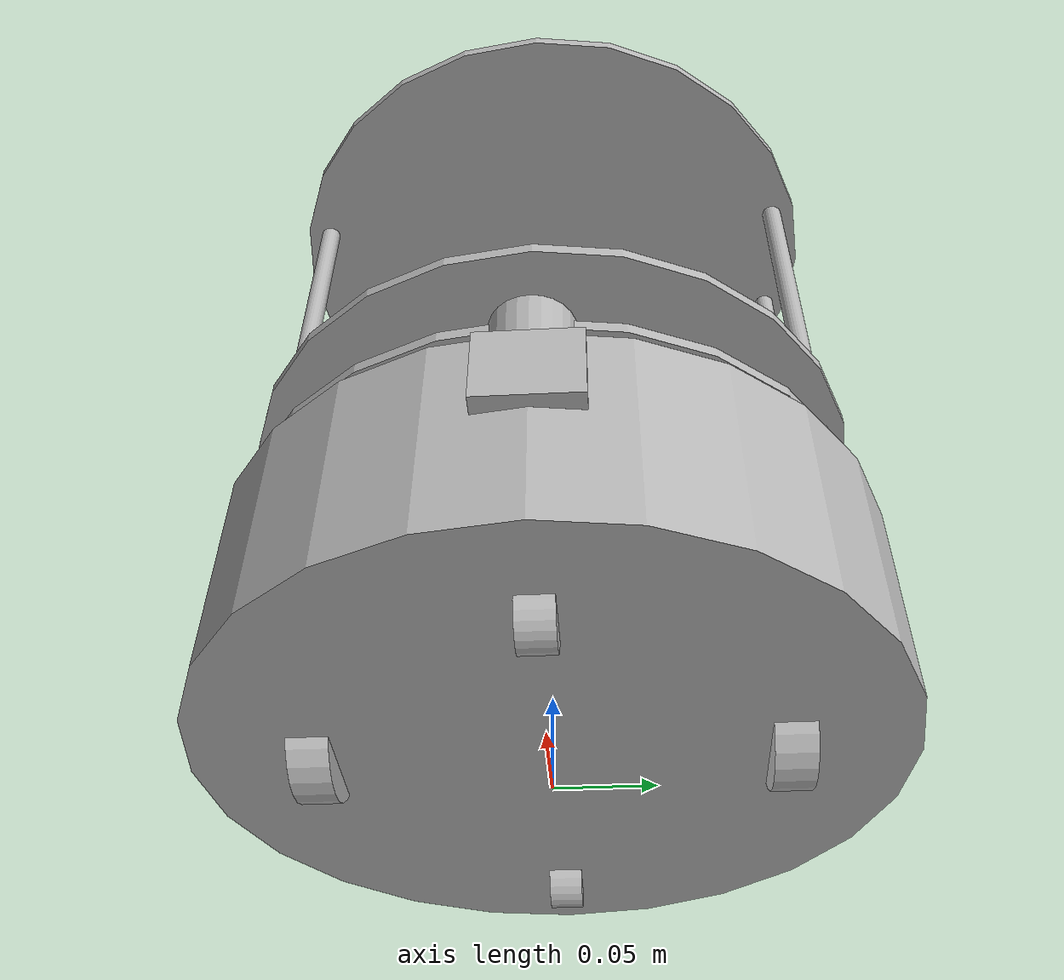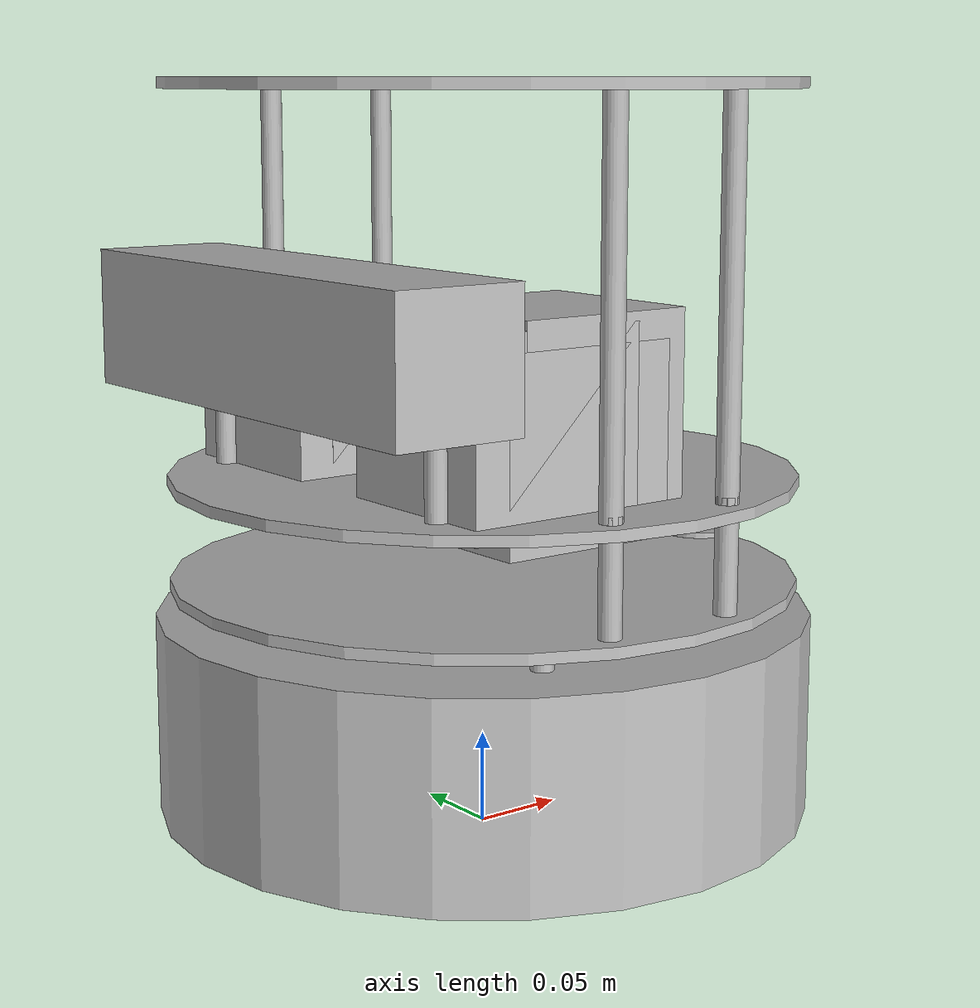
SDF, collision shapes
<?xml version="1.0"?>
<sdf version='1.6'>
  <model name='turtlebotROS'>
    <link name='base_footprint'>
      <pose frame=''>0 0 0 0 -0 0</pose>
      <inertial>
        <pose frame=''>-0.009496 1.3e-05 0.135573 0 -0 0</pose>
        <mass>4.9213</mass>
        <inertia>
          <ixx>0.142129</ixx>
          <ixy>-4.09257e-06</ixy>
          <ixz>0.0154899</ixz>
          <iyy>0.140784</iyy>
          <iyz>6.52071e-06</iyz>
          <izz>0.0801071</izz>
        </inertia>
      </inertial>
      <collision name='base_footprint_fixed_joint_lump__base_collision'>
        <pose frame=''>0 0 0.06969 0 -0 0</pose>
        <geometry>
          <cylinder>
            <length>0.10938</length>
            <radius>0.178</radius>
          </cylinder>
        </geometry>
      </collision>
      <collision name='base_footprint_fixed_joint_lump__camera_link_collision_1'>
        <pose frame=''>-0.118 0 0.2812 0 -0 0</pose>
        <geometry>
          <box>
            <size>0.07271 0.27794 0.073</size>
          </box>
        </geometry>
        <surface>
          <contact>
            <ode/>
          </contact>
          <friction>
            <ode/>
          </friction>
        </surface>
      </collision>
      <collision name='base_footprint_fixed_joint_lump__caster_back_link_collision_2'>
        <pose frame=''>-0.135 0 0.0192 -1.5708 0 0</pose>
        <geometry>
          <cylinder>
            <length>0.0176</length>
            <radius>0.017</radius>
          </cylinder>
        </geometry>
        <surface>
          <contact>
            <ode>
              <kp>1e+06</kp>
              <kd>100</kd>
              <max_vel>1</max_vel>
              <min_depth>0.001</min_depth>
            </ode>
          </contact>
          <friction>
            <ode>
              <mu>0</mu>
              <mu2>0</mu2>
            </ode>
          </friction>
        </surface>
      </collision>
      <collision name='base_footprint_fixed_joint_lump__caster_front_link_collision_3'>
        <pose frame=''>0.115 0 0.0172 -1.5708 0 0</pose>
        <geometry>
          <cylinder>
            <length>0.0176</length>
            <radius>0.017</radius>
          </cylinder>
        </geometry>
        <surface>
          <contact>
            <ode>
              <kp>1e+06</kp>
              <kd>100</kd>
              <max_vel>1</max_vel>
              <min_depth>0.001</min_depth>
            </ode>
          </contact>
          <friction>
            <ode>
              <mu>0</mu>
              <mu2>0</mu2>
            </ode>
          </friction>
        </surface>
      </collision>
      <collision name='base_footprint_fixed_joint_lump__plate_bottom_link_collision_4'>
        <pose frame=''>0 0 0.1408 0 -0 0</pose>
        <geometry>
          <cylinder>
            <length>0.006</length>
            <radius>0.17</radius>
          </cylinder>
        </geometry>
      </collision>
      <collision name='base_footprint_fixed_joint_lump__plate_middle_link_collision_5'>
        <pose frame=''>0 0 0.1976 0 -0 0</pose>
        <geometry>
          <cylinder>
            <length>0.006</length>
            <radius>0.17</radius>
          </cylinder>
        </geometry>
      </collision>
      <collision name='base_footprint_fixed_joint_lump__plate_top_link_collision_6'>
        <pose frame=''>0 0 0.4068 0 -0 0</pose>
        <geometry>
          <cylinder>
            <length>0.006</length>
            <radius>0.17</radius>
          </cylinder>
        </geometry>
      </collision>
      <collision name='base_footprint_fixed_joint_lump__pole_bottom_0_link_collision_7'>
        <pose frame=''>0.12 0.082 0.113 0 -0 0</pose>
        <geometry>
          <cylinder>
            <length>0.0492</length>
            <radius>0.006</radius>
          </cylinder>
        </geometry>
      </collision>
      <collision name='base_footprint_fixed_joint_lump__pole_bottom_1_link_collision_8'>
        <pose frame=''>0.055 0.12 0.113 0 -0 0</pose>
        <geometry>
          <cylinder>
            <length>0.0492</length>
            <radius>0.006</radius>
          </cylinder>
        </geometry>
      </collision>
      <collision name='base_footprint_fixed_joint_lump__pole_bottom_2_link_collision_9'>
        <pose frame=''>-0.055 0.12 0.113 0 -0 0</pose>
        <geometry>
          <cylinder>
            <length>0.0492</length>
            <radius>0.006</radius>
          </cylinder>
        </geometry>
      </collision>
      <collision name='base_footprint_fixed_joint_lump__pole_bottom_3_link_collision_10'>
        <pose frame=''>0.12 -0.082 0.113 0 -0 0</pose>
        <geometry>
          <cylinder>
            <length>0.0492</length>
            <radius>0.006</radius>
          </cylinder>
        </geometry>
      </collision>
      <collision name='base_footprint_fixed_joint_lump__pole_bottom_4_link_collision_11'>
        <pose frame=''>0.055 -0.12 0.113 0 -0 0</pose>
        <geometry>
          <cylinder>
            <length>0.0492</length>
            <radius>0.006</radius>
          </cylinder>
        </geometry>
      </collision>
      <collision name='base_footprint_fixed_joint_lump__pole_bottom_5_link_collision_12'>
        <pose frame=''>-0.055 -0.12 0.113 0 -0 0</pose>
        <geometry>
          <cylinder>
            <length>0.0492</length>
            <radius>0.006</radius>
          </cylinder>
        </geometry>
      </collision>
      <collision name='base_footprint_fixed_joint_lump__pole_kinect_0_link_collision_13'>
        <pose frame=''>-0.1024 0.098 0.2474 0 -0 0</pose>
        <geometry>
          <cylinder>
            <length>0.0936</length>
            <radius>0.006</radius>
          </cylinder>
        </geometry>
      </collision>
      <collision name='base_footprint_fixed_joint_lump__pole_kinect_1_link_collision_14'>
        <pose frame=''>-0.1024 -0.098 0.2474 0 -0 0</pose>
        <geometry>
          <cylinder>
            <length>0.0936</length>
            <radius>0.006</radius>
          </cylinder>
        </geometry>
      </collision>
      <collision name='base_footprint_fixed_joint_lump__pole_middle_0_link_collision_15'>
        <pose frame=''>0.0381 0.1505 0.1742 0 -0 0</pose>
        <geometry>
          <cylinder>
            <length>0.0608</length>
            <radius>0.006</radius>
          </cylinder>
        </geometry>
      </collision>
      <collision name='base_footprint_fixed_joint_lump__pole_middle_1_link_collision_16'>
        <pose frame=''>0.0381 -0.1505 0.1742 0 -0 0</pose>
        <geometry>
          <cylinder>
            <length>0.0608</length>
            <radius>0.006</radius>
          </cylinder>
        </geometry>
      </collision>
      <collision name='base_footprint_fixed_joint_lump__pole_middle_2_link_collision_17'>
        <pose frame=''>-0.0381 0.1505 0.1742 0 -0 0</pose>
        <geometry>
          <cylinder>
            <length>0.0608</length>
            <radius>0.006</radius>
          </cylinder>
        </geometry>
      </collision>
      <collision name='base_footprint_fixed_joint_lump__pole_middle_3_link_collision_18'>
        <pose frame=''>-0.0381 -0.1505 0.1742 0 -0 0</pose>
        <geometry>
          <cylinder>
            <length>0.0608</length>
            <radius>0.006</radius>
          </cylinder>
        </geometry>
      </collision>
      <collision name='base_footprint_fixed_joint_lump__pole_top_0_link_collision_19'>
        <pose frame=''>0.0381 0.1505 0.3022 0 -0 0</pose>
        <geometry>
          <cylinder>
            <length>0.2032</length>
            <radius>0.006</radius>
          </cylinder>
        </geometry>
      </collision>
      <collision name='base_footprint_fixed_joint_lump__pole_top_1_link_collision_20'>
        <pose frame=''>0.0381 -0.1505 0.3022 0 -0 0</pose>
        <geometry>
          <cylinder>
            <length>0.2032</length>
            <radius>0.006</radius>
          </cylinder>
        </geometry>
      </collision>
      <collision name='base_footprint_fixed_joint_lump__pole_top_2_link_collision_21'>
        <pose frame=''>-0.0381 0.1505 0.3022 0 -0 0</pose>
        <geometry>
          <cylinder>
            <length>0.2032</length>
            <radius>0.006</radius>
          </cylinder>
        </geometry>
      </collision>
      <collision name='base_footprint_fixed_joint_lump__pole_top_3_link_collision_22'>
        <pose frame=''>-0.0381 -0.1505 0.3022 0 -0 0</pose>
        <geometry>
          <cylinder>
            <length>0.2032</length>
            <radius>0.006</radius>
          </cylinder>
        </geometry>
      </collision>
      <visual name='base_footprint_fixed_joint_lump__base_link_visual'>
        <pose frame=''>0.001 0 0.06219 0 -0 0</pose>
        <geometry>
          <mesh>
            <scale>1 1 1</scale>
            <uri>model://turtlebotROS/meshes/main_body.dae</uri>
          </mesh>
        </geometry>
        <material>
          <script>
            <uri>__default__</uri>
            <name>__default__</name>
          </script>
        </material>
      </visual>
      <visual name='base_footprint_fixed_joint_lump__camera_link_visual_1'>
        <pose frame=''>-0.118 0 0.2812 0 -0 1.5708</pose>
        <geometry>
          <mesh>
            <scale>1 1 1</scale>
            <uri>model://turtlebotROS/meshes/sensors/kinect.dae</uri>
          </mesh>
        </geometry>
        <material>
          <script>
            <uri>__default__</uri>
            <name>__default__</name>
          </script>
        </material>
      </visual>
      <visual name='base_footprint_fixed_joint_lump__plate_bottom_link_visual_2'>
        <pose frame=''>0.02364 0 0.1408 0 -0 0</pose>
        <geometry>
          <mesh>
            <scale>1 1 1</scale>
            <uri>model://turtlebotROS/meshes/stacks/hexagons/plate_bottom.dae</uri>
          </mesh>
        </geometry>
      </visual>
      <visual name='base_footprint_fixed_joint_lump__plate_middle_link_visual_3'>
        <pose frame=''>-0.01364 0 0.1976 0 -0 0</pose>
        <geometry>
          <mesh>
            <scale>1 1 1</scale>
            <uri>model://turtlebotROS/meshes/stacks/hexagons/plate_middle.dae</uri>
          </mesh>
        </geometry>
      </visual>
      <visual name='base_footprint_fixed_joint_lump__plate_top_link_visual_4'>
        <pose frame=''>-0.01364 0 0.4068 0 -0 0</pose>
        <geometry>
          <mesh>
            <scale>1 1 1</scale>
            <uri>model://turtlebotROS/meshes/stacks/hexagons/plate_top.dae</uri>
          </mesh>
        </geometry>
      </visual>
      <visual name='base_footprint_fixed_joint_lump__pole_bottom_0_link_visual_5'>
        <pose frame=''>0.12 0.082 0.113 0 -0 0</pose>
        <geometry>
          <mesh>
            <scale>1 1 1</scale>
            <uri>model://turtlebotROS/meshes/stacks/hexagons/pole_bottom.dae</uri>
          </mesh>
        </geometry>
      </visual>
      <visual name='base_footprint_fixed_joint_lump__pole_bottom_1_link_visual_6'>
        <pose frame=''>0.055 0.12 0.113 0 -0 0</pose>
        <geometry>
          <mesh>
            <scale>1 1 1</scale>
            <uri>model://turtlebotROS/meshes/stacks/hexagons/pole_bottom.dae</uri>
          </mesh>
        </geometry>
      </visual>
      <visual name='base_footprint_fixed_joint_lump__pole_bottom_2_link_visual_7'>
        <pose frame=''>-0.055 0.12 0.113 0 -0 0</pose>
        <geometry>
          <mesh>
            <scale>1 1 1</scale>
            <uri>model://turtlebotROS/meshes/stacks/hexagons/pole_bottom.dae</uri>
          </mesh>
        </geometry>
      </visual>
      <visual name='base_footprint_fixed_joint_lump__pole_bottom_3_link_visual_8'>
        <pose frame=''>0.12 -0.082 0.113 0 -0 0</pose>
        <geometry>
          <mesh>
            <scale>1 1 1</scale>
            <uri>model://turtlebotROS/meshes/stacks/hexagons/pole_bottom.dae</uri>
          </mesh>
        </geometry>
      </visual>
      <visual name='base_footprint_fixed_joint_lump__pole_bottom_4_link_visual_9'>
        <pose frame=''>0.055 -0.12 0.113 0 -0 0</pose>
        <geometry>
          <mesh>
            <scale>1 1 1</scale>
            <uri>model://turtlebotROS/meshes/stacks/hexagons/pole_bottom.dae</uri>
          </mesh>
        </geometry>
      </visual>
      <visual name='base_footprint_fixed_joint_lump__pole_bottom_5_link_visual_10'>
        <pose frame=''>-0.055 -0.12 0.113 0 -0 0</pose>
        <geometry>
          <mesh>
            <scale>1 1 1</scale>
            <uri>model://turtlebotROS/meshes/stacks/hexagons/pole_bottom.dae</uri>
          </mesh>
        </geometry>
      </visual>
      <visual name='base_footprint_fixed_joint_lump__pole_kinect_0_link_visual_11'>
        <pose frame=''>-0.1024 0.098 0.2374 0 -0 0</pose>
        <geometry>
          <mesh>
            <scale>1 1 1</scale>
            <uri>model://turtlebotROS/meshes/sensors/sensor_pole.dae</uri>
          </mesh>
        </geometry>
      </visual>
      <visual name='base_footprint_fixed_joint_lump__pole_kinect_1_link_visual_12'>
        <pose frame=''>-0.1024 -0.098 0.2374 0 -0 0</pose>
        <geometry>
          <mesh>
            <scale>1 1 1</scale>
            <uri>model://turtlebotROS/meshes/sensors/sensor_pole.dae</uri>
          </mesh>
        </geometry>
      </visual>
      <visual name='base_footprint_fixed_joint_lump__pole_middle_0_link_visual_13'>
        <pose frame=''>0.0381 0.1505 0.1742 3.14159 -0 3.14159</pose>
        <geometry>
          <mesh>
            <scale>1 1 1</scale>
            <uri>model://turtlebotROS/meshes/stacks/hexagons/pole_middle.dae</uri>
          </mesh>
        </geometry>
      </visual>
      <visual name='base_footprint_fixed_joint_lump__pole_middle_1_link_visual_14'>
        <pose frame=''>0.0381 -0.1505 0.1742 3.14159 -0 3.14159</pose>
        <geometry>
          <mesh>
            <scale>1 1 1</scale>
            <uri>model://turtlebotROS/meshes/stacks/hexagons/pole_middle.dae</uri>
          </mesh>
        </geometry>
      </visual>
      <visual name='base_footprint_fixed_joint_lump__pole_middle_2_link_visual_15'>
        <pose frame=''>-0.0381 0.1505 0.1742 3.14159 -0 3.14159</pose>
        <geometry>
          <mesh>
            <scale>1 1 1</scale>
            <uri>model://turtlebotROS/meshes/stacks/hexagons/pole_middle.dae</uri>
          </mesh>
        </geometry>
      </visual>
      <visual name='base_footprint_fixed_joint_lump__pole_middle_3_link_visual_16'>
        <pose frame=''>-0.0381 -0.1505 0.1742 3.14159 -0 3.14159</pose>
        <geometry>
          <mesh>
            <scale>1 1 1</scale>
            <uri>model://turtlebotROS/meshes/stacks/hexagons/pole_middle.dae</uri>
          </mesh>
        </geometry>
      </visual>
      <visual name='base_footprint_fixed_joint_lump__pole_top_0_link_visual_17'>
        <pose frame=''>0.0381 0.1505 0.3022 0 -0 0</pose>
        <geometry>
          <mesh>
            <scale>1 1 1</scale>
            <uri>model://turtlebotROS/meshes/stacks/hexagons/pole_top.dae</uri>
          </mesh>
        </geometry>
      </visual>
      <visual name='base_footprint_fixed_joint_lump__pole_top_1_link_visual_18'>
        <pose frame=''>0.0381 -0.1505 0.3022 0 -0 0</pose>
        <geometry>
          <mesh>
            <scale>1 1 1</scale>
            <uri>model://turtlebotROS/meshes/stacks/hexagons/pole_top.dae</uri>
          </mesh>
        </geometry>
      </visual>
      <visual name='base_footprint_fixed_joint_lump__pole_top_2_link_visual_19'>
        <pose frame=''>-0.0381 0.1505 0.3022 0 -0 0</pose>
        <geometry>
          <mesh>
            <scale>1 1 1</scale>
            <uri>model://turtlebotROS/meshes/stacks/hexagons/pole_top.dae</uri>
          </mesh>
        </geometry>
      </visual>
      <visual name='base_footprint_fixed_joint_lump__pole_top_3_link_visual_20'>
        <pose frame=''>-0.0381 -0.1505 0.3022 0 -0 0</pose>
        <geometry>
          <mesh>
            <scale>1 1 1</scale>
            <uri>model://turtlebotROS/meshes/stacks/hexagons/pole_top.dae</uri>
          </mesh>
        </geometry>
      </visual>
      <velocity_decay/>
      <sensor name='bumpers' type='contact'>
        <always_on>1</always_on>
        <update_rate>50</update_rate>
        <visualize>1</visualize>
        <contact>
          <collision>base_footprint_fixed_joint_lump__base_collision</collision>
          <topic>__default_topic__</topic>
        </contact>
        <pose frame=''>0 0 0.0102 0 -0 0</pose>
      </sensor>
      <velocity_decay/>
      <sensor name='camera' type='depth'>
        <always_on>1</always_on>
        <update_rate>20</update_rate>
        <camera name='__default__'>
          <horizontal_fov>1.0472</horizontal_fov>
          <image>
            <format>B8G8R8</format>
            <width>640</width>
            <height>480</height>
          </image>
          <clip>
            <near>0.05</near>
            <far>8</far>
          </clip>
        </camera>
        <pose frame=''>-0.118 0 0.2812 0 -0 0</pose>
      </sensor>
      <velocity_decay/>
      <velocity_decay/>
      <velocity_decay/>
      <sensor name='cliff_sensor_front' type='ray'>
        <always_on>1</always_on>
        <update_rate>50</update_rate>
        <visualize>1</visualize>
        <ray>
          <scan>
            <horizontal>
              <samples>50</samples>
              <resolution>1</resolution>
              <min_angle>-0.0436</min_angle>
              <max_angle>0.0436</max_angle>
            </horizontal>
          </scan>
          <range>
            <min>0.01</min>
            <max>0.15</max>
            <resolution>1</resolution>
          </range>
        </ray>
        <pose frame=''>0.156 0 0.0316 3.14159 1.57079 3.14159</pose>
      </sensor>
      <velocity_decay/>
      <sensor name='cliff_sensor_left' type='ray'>
        <always_on>1</always_on>
        <update_rate>50</update_rate>
        <visualize>1</visualize>
        <ray>
          <scan>
            <horizontal>
              <samples>50</samples>
              <resolution>1</resolution>
              <min_angle>-0.0436</min_angle>
              <max_angle>0.0436</max_angle>
            </horizontal>
          </scan>
          <range>
            <min>0.01</min>
            <max>0.15</max>
            <resolution>1</resolution>
          </range>
        </ray>
        <pose frame=''>0.08734 0.13601 0.0316 3.14159 1.57079 3.14159</pose>
      </sensor>
      <velocity_decay/>
      <sensor name='cliff_sensor_right' type='ray'>
        <always_on>1</always_on>
        <update_rate>50</update_rate>
        <visualize>1</visualize>
        <ray>
          <scan>
            <horizontal>
              <samples>50</samples>
              <resolution>1</resolution>
              <min_angle>-0.0436</min_angle>
              <max_angle>0.0436</max_angle>
            </horizontal>
          </scan>
          <range>
            <min>0.01</min>
            <max>0.15</max>
            <resolution>1</resolution>
          </range>
        </ray>
        <pose frame=''>0.085 -0.13601 0.0316 3.14159 1.57079 3.14159</pose>
      </sensor>
      <gravity>1</gravity>
      <velocity_decay/>
      <sensor name='imu' type='imu'>
        <always_on>1</always_on>
        <update_rate>50</update_rate>
        <visualize>0</visualize>
        <imu>
          <angular_velocity>
            <x>
              <noise type='gaussian'>
                <mean>0</mean>
                <stddev>1.96e-06</stddev>
                <bias_mean>0</bias_mean>
                <bias_stddev>0</bias_stddev>
              </noise>
            </x>
            <y>
              <noise type='gaussian'>
                <mean>0</mean>
                <stddev>1.96e-06</stddev>
                <bias_mean>0</bias_mean>
                <bias_stddev>0</bias_stddev>
              </noise>
            </y>
            <z>
              <noise type='gaussian'>
                <mean>0</mean>
                <stddev>1.96e-06</stddev>
                <bias_mean>0</bias_mean>
                <bias_stddev>0</bias_stddev>
              </noise>
            </z>
          </angular_velocity>
          <linear_acceleration>
            <x>
              <noise type='gaussian'>
                <mean>0</mean>
                <stddev>0.017</stddev>
                <bias_mean>0.1</bias_mean>
                <bias_stddev>0.001</bias_stddev>
              </noise>
            </x>
            <y>
              <noise type='gaussian'>
                <mean>0</mean>
                <stddev>0.017</stddev>
                <bias_mean>0.1</bias_mean>
                <bias_stddev>0.001</bias_stddev>
              </noise>
            </y>
            <z>
              <noise type='gaussian'>
                <mean>0</mean>
                <stddev>0.017</stddev>
                <bias_mean>0.1</bias_mean>
                <bias_stddev>0.001</bias_stddev>
              </noise>
            </z>
          </linear_acceleration>
        </imu>
        <pose frame=''>0.056 0.062 0.0304 0 -0 0</pose>
      </sensor>

    </link>
    <link name='wheel_left_link'>
      <pose frame=''>0 0.115 0.0352 -1.5708 0 0</pose>
      <inertial>
        <pose frame=''>0 0 0 0 -0 0</pose>
        <mass>0.01</mass>
        <inertia>
          <ixx>0.001</ixx>
          <ixy>0</ixy>
          <ixz>0</ixz>
          <iyy>0.001</iyy>
          <iyz>0</iyz>
          <izz>0.001</izz>
        </inertia>
      </inertial>
      <collision name='wheel_left_link_collision'>
        <pose frame=''>0 0 0 0 -0 0</pose>
        <geometry>
          <cylinder>
            <length>0.0206</length>
            <radius>0.0352</radius>
          </cylinder>
        </geometry>
        <surface>
          <contact>
            <ode>
              <kp>1e+06</kp>
              <kd>100</kd>
              <max_vel>1</max_vel>
              <min_depth>0.001</min_depth>
            </ode>
          </contact>
          <friction>
            <ode>
              <mu>1</mu>
              <mu2>1</mu2>
            </ode>
          </friction>
        </surface>
      </collision>
      <visual name='wheel_left_link_visual'>
        <pose frame=''>0 0 0 0 -0 0</pose>
        <geometry>
          <mesh>
            <scale>1 1 1</scale>
            <uri>model://turtlebotROS/meshes/wheel.dae</uri>
          </mesh>
        </geometry>
        <material>
          <script>
            <uri>__default__</uri>
            <name>__default__</name>
          </script>
        </material>
      </visual>
      <gravity>1</gravity>
      <velocity_decay/>
    </link>
    <joint name='wheel_left_joint' type='revolute'>
      <child>wheel_left_link</child>
      <parent>base_footprint</parent>
      <axis>
        <xyz>0 1 0</xyz>
        <limit>
          <lower>-1e+16</lower>
          <upper>1e+16</upper>
        </limit>
        <dynamics>
          <spring_reference>0</spring_reference>
          <spring_stiffness>0</spring_stiffness>
        </dynamics>
        <use_parent_model_frame>1</use_parent_model_frame>
      </axis>
    </joint>
    <link name='wheel_right_link'>
      <pose frame=''>0 -0.115 0.0352 -1.5708 0 0</pose>
      <inertial>
        <pose frame=''>0 0 0 0 -0 0</pose>
        <mass>0.01</mass>
        <inertia>
          <ixx>0.001</ixx>
          <ixy>0</ixy>
          <ixz>0</ixz>
          <iyy>0.001</iyy>
          <iyz>0</iyz>
          <izz>0.001</izz>
        </inertia>
      </inertial>
      <collision name='wheel_right_link_collision'>
        <pose frame=''>0 0 0 0 -0 0</pose>
        <geometry>
          <cylinder>
            <length>0.0206</length>
            <radius>0.035</radius>
          </cylinder>
        </geometry>
        <surface>
          <contact>
            <ode>
              <kp>1e+06</kp>
              <kd>100</kd>
              <max_vel>1</max_vel>
              <min_depth>0.001</min_depth>
            </ode>
          </contact>
          <friction>
            <ode>
              <mu>1</mu>
              <mu2>1</mu2>
            </ode>
          </friction>
        </surface>
      </collision>
      <visual name='wheel_right_link_visual'>
        <pose frame=''>0 0 0 0 -0 0</pose>
        <geometry>
          <mesh>
            <scale>1 1 1</scale>
            <uri>model://turtlebotROS/meshes/wheel.dae</uri>
          </mesh>
        </geometry>
        <material>
          <script>
            <uri>__default__</uri>
            <name>__default__</name>
          </script>
        </material>
      </visual>
      <gravity>1</gravity>
      <velocity_decay/>
    </link>
    <joint name='wheel_right_joint' type='revolute'>
      <child>wheel_right_link</child>
      <parent>base_footprint</parent>
      <axis>
        <xyz>0 1 0</xyz>
        <limit>
          <lower>-1e+16</lower>
          <upper>1e+16</upper>
        </limit>
        <dynamics>
          <spring_reference>0</spring_reference>
          <spring_stiffness>0</spring_stiffness>
        </dynamics>
        <use_parent_model_frame>1</use_parent_model_frame>
      </axis>
    </joint>
    <static>0</static>
    <link name='camera_bottom_body_left'>
        <pose>-0.030000 0.076000 0.232400 -1.570000 0.000000 0.000000</pose>
        <inertial>
          <mass>0.500000</mass>
          <inertia>
            <ixx>1.000000</ixx>
            <ixy>0.000000</ixy>
            <ixz>0.000000</ixz>
            <iyy>1.000000</iyy>
            <iyz>0.000000</iyz>
            <izz>1.000000</izz>
         </inertia>
       </inertial>
        <visual name='visual'>
          <geometry>
            <mesh>
              <uri>model://turtlebotROS/meshes/sonyvid30/sonyvid30_bottom.dae</uri>
              <scale>4.000000 3.000000 3.000000</scale>
           </mesh>
         </geometry>
       </visual>
        <collision name='collision'>
          <geometry>
            <box>
              <size>0.100000 0.100000 0.100000</size>
           </box>
         </geometry>
          <surface>
            <friction>
              <ode>
                <mu>100000.000000</mu>
                <mu2>100000.000000</mu2>
                <slip1>0.000000</slip1>
                <slip2>0.000000</slip2>
             </ode>
           </friction>
            <bounce/>
            <contact>
              <ode/>
           </contact>
         </surface>
          <max_contacts>10</max_contacts>
       </collision>
        <velocity_decay>
          <linear>0.000000</linear>
          <angular>0.000000</angular>
       </velocity_decay>
        <self_collide>0</self_collide>
        <kinematic>0</kinematic>
        <gravity>1</gravity>
   </link>
    <link name='camera_column_body_left'>
        <pose>-0.020000 0.076000 0.247400 -1.570000 0.000000 0.000000</pose>
        <inertial>
          <mass>0.500000</mass>
          <inertia>
            <ixx>1.000000</ixx>
            <ixy>0.000000</ixy>
            <ixz>0.000000</ixz>
            <iyy>1.000000</iyy>
            <iyz>0.000000</iyz>
            <izz>1.000000</izz>
         </inertia>
       </inertial>
        <visual name='visual'>
          <geometry>
            <mesh>
              <uri>model://turtlebotROS/meshes/sonyvid30/sonyvid30_mid.dae</uri>
              <scale>0.600000 1.000000 1.000000</scale>
           </mesh>
         </geometry>
       </visual>
        <collision name='collision'>
          <geometry>
            <box>
              <size>0.100000 0.100000 0.100000</size>
           </box>
         </geometry>
          <surface>
            <friction>
              <ode>
                <mu>100000.000000</mu>
                <mu2>100000.000000</mu2>
                <slip1>0.000000</slip1>
                <slip2>0.000000</slip2>
             </ode>
           </friction>
            <bounce/>
            <contact>
              <ode/>
           </contact>
         </surface>
          <max_contacts>10</max_contacts>
       </collision>
        <velocity_decay>
          <linear>0.000000</linear>
          <angular>0.000000</angular>
       </velocity_decay>
        <self_collide>0</self_collide>
        <kinematic>0</kinematic>
        <gravity>1</gravity>
   </link>
    <link name='camera_top_body_left'>
        <pose>-0.050000 0.076000 0.242400 -1.570000 -0.000000 3.140000</pose>
        <inertial>
          <mass>0.500000</mass>
          <inertia>
            <ixx>1.000000</ixx>
            <ixy>0.000000</ixy>
            <ixz>0.000000</ixz>
            <iyy>1.000000</iyy>
            <iyz>0.000000</iyz>
            <izz>1.000000</izz>
         </inertia>
       </inertial>
        <sensor name='cam_turtlebot_left' type='camera'>
          <pose>0.000000 0.000000 0.000000 -1.570000 -0.000000 3.140000</pose>
          <update_rate>20.000000</update_rate>
          <camera name='__default__'>
            <horizontal_fov>1.570000</horizontal_fov>
            <image>
              <width>640</width>
              <height>480</height>
              <format>R8G8B8</format>
           </image>
            <clip>
              <near>0.300000</near>
              <far>15.000000</far>
           </clip>
         </camera>
         <plugin name="camera_controller_left" filename="libgazebo_ros_camera.so">
        <alwaysOn>true</alwaysOn>
        <updateRate>0.0</updateRate>
        <cameraName>TurtlebotROS/cameraL</cameraName>
        <imageTopicName>image_raw</imageTopicName>
        <cameraInfoTopicName>camera_info</cameraInfoTopicName>
        <frameName>camera_link</frameName>
        <hackBaseline>0.07</hackBaseline>
        <distortionK1>0.0</distortionK1>
        <distortionK2>0.0</distortionK2>
        <distortionK3>0.0</distortionK3>
        <distortionT1>0.0</distortionT1>
        <distortionT2>0.0</distortionT2>
      </plugin>
       </sensor>
        <visual name='visual'>
          <geometry>
            <mesh>
              <uri>model://turtlebotROS/meshes/sonyvid30/sonyvid30_top.dae</uri>
              <scale>2.000000 2.000000 1.300000</scale>
           </mesh>
         </geometry>
       </visual>
        <collision name='collision'>
          <geometry>
            <box>
              <size>0.100000 0.100000 0.100000</size>
           </box>
         </geometry>
          <surface>
            <friction>
              <ode>
                <mu>100000.000000</mu>
                <mu2>100000.000000</mu2>
                <slip1>0.000000</slip1>
                <slip2>0.000000</slip2>
             </ode>
           </friction>
            <bounce/>
            <contact>
              <ode/>
           </contact>
         </surface>
          <max_contacts>10</max_contacts>
       </collision>
        <velocity_decay>
          <linear>0.000000</linear>
          <angular>0.000000</angular>
       </velocity_decay>
        <self_collide>0</self_collide>
        <kinematic>0</kinematic>
        <gravity>1</gravity>
   </link>
    <link name='camera_bottom_body_right'>
        <pose>-0.030000 -0.076000 0.232400 -1.570000 0.000000 0.000000</pose>
        <inertial>
          <mass>0.500000</mass>
          <inertia>
            <ixx>1.000000</ixx>
            <ixy>0.000000</ixy>
            <ixz>0.000000</ixz>
            <iyy>1.000000</iyy>
            <iyz>0.000000</iyz>
            <izz>1.000000</izz>
         </inertia>
       </inertial>
        <visual name='visual'>
          <geometry>
            <mesh>
              <uri>model://turtlebotROS/meshes/sonyvid30/sonyvid30_bottom.dae</uri>
              <scale>4.000000 3.000000 3.000000</scale>
           </mesh>
         </geometry>
       </visual>
        <collision name='collision'>
          <geometry>
            <box>
              <size>0.100000 0.100000 0.100000</size>
           </box>
         </geometry>
          <surface>
            <friction>
              <ode>
                <mu>100000.000000</mu>
                <mu2>100000.000000</mu2>
                <slip1>0.000000</slip1>
                <slip2>0.000000</slip2>
             </ode>
           </friction>
            <bounce/>
            <contact>
              <ode/>
           </contact>
         </surface>
          <max_contacts>10</max_contacts>
       </collision>
        <velocity_decay>
          <linear>0.000000</linear>
          <angular>0.000000</angular>
       </velocity_decay>
        <self_collide>0</self_collide>
        <kinematic>0</kinematic>
        <gravity>1</gravity>
   </link>
    <link name='camera_column_body_right'>
        <pose>-0.020000 -0.076000 0.247400 -1.570000 0.000000 0.000000</pose>
        <inertial>
          <mass>0.500000</mass>
          <inertia>
            <ixx>1.000000</ixx>
            <ixy>0.000000</ixy>
            <ixz>0.000000</ixz>
            <iyy>1.000000</iyy>
            <iyz>0.000000</iyz>
            <izz>1.000000</izz>
         </inertia>
       </inertial>
        <visual name='visual'>
          <geometry>
            <mesh>
              <uri>model://turtlebotROS/meshes/sonyvid30/sonyvid30_mid.dae</uri>
              <scale>0.600000 1.000000 1.000000</scale>
           </mesh>
         </geometry>
       </visual>
        <collision name='collision'>
          <geometry>
            <box>
              <size>0.100000 0.100000 0.100000</size>
           </box>
         </geometry>
          <surface>
            <friction>
              <ode>
                <mu>100000.000000</mu>
                <mu2>100000.000000</mu2>
                <slip1>0.000000</slip1>
                <slip2>0.000000</slip2>
             </ode>
           </friction>
            <bounce/>
            <contact>
              <ode/>
           </contact>
         </surface>
          <max_contacts>10</max_contacts>
       </collision>
        <velocity_decay>
          <linear>0.000000</linear>
          <angular>0.000000</angular>
       </velocity_decay>
        <self_collide>0</self_collide>
        <kinematic>0</kinematic>
        <gravity>1</gravity>
   </link>
    <link name='camera_top_body_right'>
        <pose>-0.050000 -0.076000 0.242400 -1.570000 -0.000000 3.140000</pose>
        <inertial>
          <mass>0.500000</mass>
          <inertia>
            <ixx>1.000000</ixx>
            <ixy>0.000000</ixy>
            <ixz>0.000000</ixz>
            <iyy>1.000000</iyy>
            <iyz>0.000000</iyz>
            <izz>1.000000</izz>
         </inertia>
       </inertial>
        <sensor name='cam_turtlebot_right' type='camera'>
          <pose>0.000000 0.000000 0.000000 -1.570000 -0.000000 3.140000</pose>
          <update_rate>20.000000</update_rate>
          <camera name='__default__'>
            <horizontal_fov>1.570000</horizontal_fov>
            <image>
              <width>640</width>
              <height>480</height>
              <format>R8G8B8</format>
           </image>
            <clip>
              <near>0.300000</near>
              <far>15.000000</far>
           </clip>
         </camera>
         <plugin name="camera_controller_right" filename="libgazebo_ros_camera.so">
        <alwaysOn>true</alwaysOn>
        <updateRate>0.0</updateRate>
        <cameraName>TurtlebotROS/cameraR</cameraName>
        <imageTopicName>image_raw</imageTopicName>
        <cameraInfoTopicName>camera_info</cameraInfoTopicName>
        <frameName>camera_link</frameName>
        <hackBaseline>0.07</hackBaseline>
        <distortionK1>0.0</distortionK1>
        <distortionK2>0.0</distortionK2>
        <distortionK3>0.0</distortionK3>
        <distortionT1>0.0</distortionT1>
        <distortionT2>0.0</distortionT2>
      </plugin>
       </sensor>
        <visual name='visual'>
          <geometry>
            <mesh>
              <uri>model://turtlebotROS/meshes/sonyvid30/sonyvid30_top.dae</uri>
              <scale>2.000000 2.000000 1.300000</scale>
           </mesh>
         </geometry>
       </visual>
        <collision name='collision'>
          <geometry>
            <box>
              <size>0.100000 0.100000 0.100000</size>
           </box>
         </geometry>
          <surface>
            <friction>
              <ode>
                <mu>100000.000000</mu>
                <mu2>100000.000000</mu2>
                <slip1>0.000000</slip1>
                <slip2>0.000000</slip2>
             </ode>
           </friction>
            <bounce/>
            <contact>
              <ode/>
           </contact>
         </surface>
          <max_contacts>10</max_contacts>
       </collision>
        <velocity_decay>
          <linear>0.000000</linear>
          <angular>0.000000</angular>
       </velocity_decay>
        <self_collide>0</self_collide>
        <kinematic>0</kinematic>
        <gravity>1</gravity>
   </link>
   <link name='laser'>
        <pose>0.160000 0.000000 0.112000 0.000000 0.000000 0.000000</pose>
        <gravity>0</gravity>
        <inertial>
          <mass>0.100000</mass>
          <inertia>
            <ixx>1.000000</ixx>
            <ixy>0.000000</ixy>
            <ixz>0.000000</ixz>
            <iyy>1.000000</iyy>
            <iyz>0.000000</iyz>
            <izz>1.000000</izz>
         </inertia>
       </inertial>
        <visual name='visual'>
          <geometry>
            <mesh>
              <uri>model://hokuyo/meshes/hokuyo.dae</uri>
           </mesh>
         </geometry>
       </visual>
        <collision name='collision-base'>
          <pose>0.000000 0.000000 -0.014500 0.000000 0.000000 0.000000</pose>
          <geometry>
            <box>
              <size>0.050000 0.050000 0.041000</size>
           </box>
         </geometry>
          <max_contacts>10</max_contacts>
          <surface>
            <bounce/>
            <friction>
              <ode/>
           </friction>
            <contact>
              <ode/>
           </contact>
         </surface>
       </collision>
        <collision name='collision-top'>
          <pose>0.000000 0.000000 0.020500 0.000000 0.000000 0.000000</pose>
          <geometry>
            <cylinder>
              <radius>0.021000</radius>
              <length>0.029000</length>
           </cylinder>
         </geometry>
          <max_contacts>10</max_contacts>
          <surface>
            <bounce/>
            <friction>
              <ode/>
           </friction>
            <contact>
              <ode/>
           </contact>
         </surface>
       </collision>
        <sensor name='laser' type='ray'>
          <ray>
            <scan>
              <horizontal>
                <samples>180</samples>
                <resolution>1.000000</resolution>
                <min_angle>-1.570000</min_angle>
                <max_angle>1.570000</max_angle>
             </horizontal>
           </scan>
            <range>
              <min>0.080000</min>
              <max>10.000000</max>
              <resolution>0.010000</resolution>
           </range>
         </ray>
          <update_rate>20.000000</update_rate>
          <always_on>1</always_on>
          <visualize>1</visualize>
      <plugin name="gazebo_ros_head_hokuyo_controller" filename="libgazebo_ros_laser.so">
        <topicName>/turtlebotROS/laser/scan</topicName>
        <frameName>hokuyo_link</frameName>
      </plugin>
       </sensor>
        <velocity_decay>
          <linear>0.000000</linear>
          <angular>0.000000</angular>
       </velocity_decay>
        <self_collide>0</self_collide>
        <kinematic>0</kinematic>
   </link>
    <joint name='joint_laser' type='revolute'>
        <parent>base_footprint</parent>
        <child>laser</child>
        <axis>
          <xyz>0.000000 0.000000 0.000000</xyz>
          <limit>
            <lower>0.000000</lower>
            <upper>0.000000</upper>
         </limit>
       </axis>
   </joint>
   <joint name='pan_joint_left' type='revolute'>
        <pose>0.000000 0.000000 0.000000 0.000000 0.000000 0.000000</pose>
        <child>camera_bottom_body_left</child>
        <parent>camera_column_body_left</parent>
        <axis>
          <xyz>0.000000 1.000000 0.000000</xyz>
          <limit>
            <lower>0.000000</lower>
            <upper>0.000000</upper>
         </limit>
       </axis>
   </joint>
    <joint name='tilt_joint_left' type='revolute'>
        <pose>0.000000 0.000000 0.000000 0.000000 0.000000 0.000000</pose>
        <child>camera_column_body_left</child>
        <parent>camera_top_body_left</parent>
        <axis>
          <xyz>1.000000 0.000000 0.000000</xyz>
          <limit>
            <lower>0.000000</lower>
            <upper>0.000000</upper>
         </limit>
       </axis>
   </joint>
    <joint name='camera_left' type='revolute'>
        <pose>0.000000 0.000000 0.000000 0.000000 0.000000 0.000000</pose>
        <child>camera_bottom_body_left</child>
        <parent>base_footprint</parent>
        <axis>
          <xyz>0.000000 0.000000 0.000000</xyz>
          <limit>
            <lower>0.000000</lower>
            <upper>0.000000</upper>
         </limit>
       </axis>
   </joint>
    <joint name='pan_joint_right' type='revolute'>
        <pose>0.000000 0.000000 0.000000 0.000000 0.000000 0.000000</pose>
        <child>camera_bottom_body_right</child>
        <parent>camera_column_body_right</parent>
        <axis>
          <xyz>0.000000 1.000000 0.000000</xyz>
          <limit>
            <lower>0.000000</lower>
            <upper>0.000000</upper>
         </limit>
       </axis>
   </joint>
    <joint name='tilt_joint_right' type='revolute'>
        <pose>0.000000 0.000000 0.000000 0.000000 0.000000 0.000000</pose>
        <child>camera_column_body_right</child>
        <parent>camera_top_body_right</parent>
        <axis>
          <xyz>1.000000 0.000000 0.000000</xyz>
          <limit>
            <lower>0.000000</lower>
            <upper>0.000000</upper>
         </limit>
       </axis>
   </joint>
    <joint name='camera_right' type='revolute'>
        <pose>0.000000 0.000000 0.000000 0.000000 0.000000 0.000000</pose>
        <child>camera_bottom_body_right</child>
        <parent>base_footprint</parent>
        <axis>
          <xyz>0.000000 0.000000 0.000000</xyz>
          <limit>
            <lower>0.000000</lower>
            <upper>0.000000</upper>
         </limit>
       </axis>
   </joint>
    <plugin name='kobuki_controller' filename='libgazebo_ros_kobuki.so'>
      <publish_tf>1</publish_tf>
      <left_wheel_joint_name>wheel_left_joint</left_wheel_joint_name>
      <right_wheel_joint_name>wheel_right_joint</right_wheel_joint_name>
      <wheel_separation>.230</wheel_separation>
      <wheel_diameter>0.070</wheel_diameter>
      <torque>1.0</torque>
      <velocity_command_timeout>0.6</velocity_command_timeout>
      <cliff_sensor_left_name>cliff_sensor_left</cliff_sensor_left_name>
      <cliff_sensor_center_name>cliff_sensor_front</cliff_sensor_center_name>
      <cliff_sensor_right_name>cliff_sensor_right</cliff_sensor_right_name>
      <cliff_detection_threshold>0.04</cliff_detection_threshold>
      <bumper_name>bumpers</bumper_name>
      <imu_name>imu</imu_name>
    </plugin>
  </model>
</sdf>
